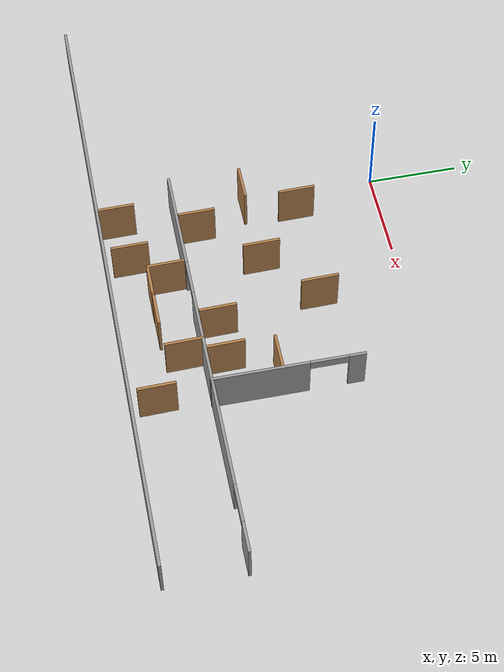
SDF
<sdf version="1.6">
 <world name="default">
  <model name="ground_plane">
   <static>1</static>
   <link name="link">
    <collision name="collision">
     <geometry><plane><normal>0 0 1</normal><size>100 100</size></plane></geometry>
     <surface><friction><ode><mu>100</mu><mu2>50</mu2></ode></friction></surface>
    </collision>
    <visual name="visual">
     <cast_shadows>0</cast_shadows>
     <geometry><plane><normal>0 0 1</normal><size>100 100</size></plane></geometry>
     <material>
      <script><uri>file://media/materials/scripts/gazebo.material</uri><name>Gazebo/Grey</name></script>
     </material>
    </visual>
   </link>
  </model>
  <model name="rbcp_final4">
   <link name="Wall_48">
    <pose>-0.05 -11.925 2.5 0 -0 3.14159</pose>
    <visual name="Wall_48_Visual">
     <pose>0 0 1.25 0 -0 0</pose>
     <geometry><box><size>35.25 0.15 2.5</size></box></geometry>
     <material>
      <script><uri>file://media/materials/scripts/gazebo.material</uri><name>Gazebo/Grey</name></script>
      <ambient>1 1 1 1</ambient>
      <diffuse>0.7 0.7 0.7 1</diffuse>
      <specular>0.01 0.01 0.01 1</specular>
      <emissive>0 0 0 1</emissive>
     </material>
    </visual>
    <collision name="Wall_48_Collision">
     <pose>0 0 1.25 0 -0 0</pose>
     <geometry><box><size>35.25 0.15 2.5</size></box></geometry>
     <surface>
      <friction>
       <ode><mu>1</mu><mu2>1</mu2><fdir1>0 0 0</fdir1><slip1>0</slip1><slip2>0</slip2></ode>
       <torsional>
        <coefficient>1</coefficient>
        <patch_radius>0</patch_radius>
        <surface_radius>0</surface_radius>
        <use_patch_radius>1</use_patch_radius>
        <ode><slip>0</slip></ode>
       </torsional>
      </friction>
      <bounce><restitution_coefficient>0</restitution_coefficient><threshold>1e+06</threshold></bounce>
      <contact>
       <collide_without_contact>0</collide_without_contact>
       <collide_without_contact_bitmask>1</collide_without_contact_bitmask>
       <collide_bitmask>1</collide_bitmask>
       <ode>
        <soft_cfm>0</soft_cfm>
        <soft_erp>0.2</soft_erp>
        <kp>1e+13</kp>
        <kd>1</kd>
        <max_vel>0.01</max_vel>
        <min_depth>0</min_depth>
       </ode>
       <bullet>
        <split_impulse>1</split_impulse>
        <split_impulse_penetration_threshold>-0.01</split_impulse_penetration_threshold>
        <soft_cfm>0</soft_cfm>
        <soft_erp>0.2</soft_erp>
        <kp>1e+13</kp>
        <kd>1</kd>
       </bullet>
      </contact>
     </surface>
    </collision>
   </link>
   <link name="Wall_53">
    <pose>6.175 -7.75578 2.5 0 -0 0</pose>
    <visual name="Wall_53_Visual_0">
     <pose>-8.53919 0 1.25 0 -0 0</pose>
     <geometry><box><size>5.92162 0.15 2.5</size></box></geometry>
     <material>
      <script><uri>file://media/materials/scripts/gazebo.material</uri><name>Gazebo/Grey</name></script>
      <ambient>1 1 1 1</ambient>
      <diffuse>0.7 0.7 0.7 1</diffuse>
      <specular>0.01 0.01 0.01 1</specular>
      <emissive>0 0 0 1</emissive>
     </material>
    </visual>
    <visual name="Wall_53_Visual_1">
     <pose>2.15861 0 1.25 0 -0 0</pose>
     <geometry><box><size>11.474 0.15 2.5</size></box></geometry>
     <material>
      <script><uri>file://media/materials/scripts/gazebo.material</uri><name>Gazebo/Grey</name></script>
      <ambient>1 1 1 1</ambient>
      <diffuse>0.7 0.7 0.7 1</diffuse>
      <specular>0.01 0.01 0.01 1</specular>
      <emissive>0 0 0 1</emissive>
     </material>
    </visual>
    <visual name="Wall_53_Visual_2">
     <pose>10.6978 0 1.25 0 -0 0</pose>
     <geometry><box><size>1.6044 0.15 2.5</size></box></geometry>
     <material>
      <script><uri>file://media/materials/scripts/gazebo.material</uri><name>Gazebo/Grey</name></script>
      <ambient>1 1 1 1</ambient>
      <diffuse>0.7 0.7 0.7 1</diffuse>
      <specular>0.01 0.01 0.01 1</specular>
      <emissive>0 0 0 1</emissive>
     </material>
    </visual>
    <visual name="Wall_53_Visual_3">
     <pose>-4.57838 0 2.25 0 -0 0</pose>
     <geometry><box><size>2 0.15 0.5</size></box></geometry>
     <material>
      <script><uri>file://media/materials/scripts/gazebo.material</uri><name>Gazebo/Grey</name></script>
      <ambient>1 1 1 1</ambient>
      <diffuse>0.7 0.7 0.7 1</diffuse>
      <specular>0.01 0.01 0.01 1</specular>
      <emissive>0 0 0 1</emissive>
     </material>
    </visual>
    <visual name="Wall_53_Visual_4">
     <pose>8.8956 0 2.25 0 -0 0</pose>
     <geometry><box><size>2 0.15 0.5</size></box></geometry>
     <material>
      <script><uri>file://media/materials/scripts/gazebo.material</uri><name>Gazebo/Grey</name></script>
      <ambient>1 1 1 1</ambient>
      <diffuse>0.7 0.7 0.7 1</diffuse>
      <specular>0.01 0.01 0.01 1</specular>
      <emissive>0 0 0 1</emissive>
     </material>
    </visual>
    <collision name="Wall_53_Collision_0">
     <pose>-8.53919 0 1.25 0 -0 0</pose>
     <geometry><box><size>5.92162 0.15 2.5</size></box></geometry>
     <surface>
      <friction>
       <ode><mu>1</mu><mu2>1</mu2><fdir1>0 0 0</fdir1><slip1>0</slip1><slip2>0</slip2></ode>
       <torsional>
        <coefficient>1</coefficient>
        <patch_radius>0</patch_radius>
        <surface_radius>0</surface_radius>
        <use_patch_radius>1</use_patch_radius>
        <ode><slip>0</slip></ode>
       </torsional>
      </friction>
      <bounce><restitution_coefficient>0</restitution_coefficient><threshold>1e+06</threshold></bounce>
      <contact>
       <collide_without_contact>0</collide_without_contact>
       <collide_without_contact_bitmask>1</collide_without_contact_bitmask>
       <collide_bitmask>1</collide_bitmask>
       <ode>
        <soft_cfm>0</soft_cfm>
        <soft_erp>0.2</soft_erp>
        <kp>1e+13</kp>
        <kd>1</kd>
        <max_vel>0.01</max_vel>
        <min_depth>0</min_depth>
       </ode>
       <bullet>
        <split_impulse>1</split_impulse>
        <split_impulse_penetration_threshold>-0.01</split_impulse_penetration_threshold>
        <soft_cfm>0</soft_cfm>
        <soft_erp>0.2</soft_erp>
        <kp>1e+13</kp>
        <kd>1</kd>
       </bullet>
      </contact>
     </surface>
    </collision>
    <collision name="Wall_53_Collision_1">
     <pose>2.15861 0 1.25 0 -0 0</pose>
     <geometry><box><size>11.474 0.15 2.5</size></box></geometry>
     <surface>
      <friction>
       <ode><mu>1</mu><mu2>1</mu2><fdir1>0 0 0</fdir1><slip1>0</slip1><slip2>0</slip2></ode>
       <torsional>
        <coefficient>1</coefficient>
        <patch_radius>0</patch_radius>
        <surface_radius>0</surface_radius>
        <use_patch_radius>1</use_patch_radius>
        <ode><slip>0</slip></ode>
       </torsional>
      </friction>
      <bounce><restitution_coefficient>0</restitution_coefficient><threshold>1e+06</threshold></bounce>
      <contact>
       <collide_without_contact>0</collide_without_contact>
       <collide_without_contact_bitmask>1</collide_without_contact_bitmask>
       <collide_bitmask>1</collide_bitmask>
       <ode>
        <soft_cfm>0</soft_cfm>
        <soft_erp>0.2</soft_erp>
        <kp>1e+13</kp>
        <kd>1</kd>
        <max_vel>0.01</max_vel>
        <min_depth>0</min_depth>
       </ode>
       <bullet>
        <split_impulse>1</split_impulse>
        <split_impulse_penetration_threshold>-0.01</split_impulse_penetration_threshold>
        <soft_cfm>0</soft_cfm>
        <soft_erp>0.2</soft_erp>
        <kp>1e+13</kp>
        <kd>1</kd>
       </bullet>
      </contact>
     </surface>
    </collision>
    <collision name="Wall_53_Collision_2">
     <pose>10.6978 0 1.25 0 -0 0</pose>
     <geometry><box><size>1.6044 0.15 2.5</size></box></geometry>
     <surface>
      <friction>
       <ode><mu>1</mu><mu2>1</mu2><fdir1>0 0 0</fdir1><slip1>0</slip1><slip2>0</slip2></ode>
       <torsional>
        <coefficient>1</coefficient>
        <patch_radius>0</patch_radius>
        <surface_radius>0</surface_radius>
        <use_patch_radius>1</use_patch_radius>
        <ode><slip>0</slip></ode>
       </torsional>
      </friction>
      <bounce><restitution_coefficient>0</restitution_coefficient><threshold>1e+06</threshold></bounce>
      <contact>
       <collide_without_contact>0</collide_without_contact>
       <collide_without_contact_bitmask>1</collide_without_contact_bitmask>
       <collide_bitmask>1</collide_bitmask>
       <ode>
        <soft_cfm>0</soft_cfm>
        <soft_erp>0.2</soft_erp>
        <kp>1e+13</kp>
        <kd>1</kd>
        <max_vel>0.01</max_vel>
        <min_depth>0</min_depth>
       </ode>
       <bullet>
        <split_impulse>1</split_impulse>
        <split_impulse_penetration_threshold>-0.01</split_impulse_penetration_threshold>
        <soft_cfm>0</soft_cfm>
        <soft_erp>0.2</soft_erp>
        <kp>1e+13</kp>
        <kd>1</kd>
       </bullet>
      </contact>
     </surface>
    </collision>
    <collision name="Wall_53_Collision_3">
     <pose>-4.57838 0 2.25 0 -0 0</pose>
     <geometry><box><size>2 0.15 0.5</size></box></geometry>
     <surface>
      <friction>
       <ode><mu>1</mu><mu2>1</mu2><fdir1>0 0 0</fdir1><slip1>0</slip1><slip2>0</slip2></ode>
       <torsional>
        <coefficient>1</coefficient>
        <patch_radius>0</patch_radius>
        <surface_radius>0</surface_radius>
        <use_patch_radius>1</use_patch_radius>
        <ode><slip>0</slip></ode>
       </torsional>
      </friction>
      <bounce><restitution_coefficient>0</restitution_coefficient><threshold>1e+06</threshold></bounce>
      <contact>
       <collide_without_contact>0</collide_without_contact>
       <collide_without_contact_bitmask>1</collide_without_contact_bitmask>
       <collide_bitmask>1</collide_bitmask>
       <ode>
        <soft_cfm>0</soft_cfm>
        <soft_erp>0.2</soft_erp>
        <kp>1e+13</kp>
        <kd>1</kd>
        <max_vel>0.01</max_vel>
        <min_depth>0</min_depth>
       </ode>
       <bullet>
        <split_impulse>1</split_impulse>
        <split_impulse_penetration_threshold>-0.01</split_impulse_penetration_threshold>
        <soft_cfm>0</soft_cfm>
        <soft_erp>0.2</soft_erp>
        <kp>1e+13</kp>
        <kd>1</kd>
       </bullet>
      </contact>
     </surface>
    </collision>
    <collision name="Wall_53_Collision_4">
     <pose>8.8956 0 2.25 0 -0 0</pose>
     <geometry><box><size>2 0.15 0.5</size></box></geometry>
     <surface>
      <friction>
       <ode><mu>1</mu><mu2>1</mu2><fdir1>0 0 0</fdir1><slip1>0</slip1><slip2>0</slip2></ode>
       <torsional>
        <coefficient>1</coefficient>
        <patch_radius>0</patch_radius>
        <surface_radius>0</surface_radius>
        <use_patch_radius>1</use_patch_radius>
        <ode><slip>0</slip></ode>
       </torsional>
      </friction>
      <bounce><restitution_coefficient>0</restitution_coefficient><threshold>1e+06</threshold></bounce>
      <contact>
       <collide_without_contact>0</collide_without_contact>
       <collide_without_contact_bitmask>1</collide_without_contact_bitmask>
       <collide_bitmask>1</collide_bitmask>
       <ode>
        <soft_cfm>0</soft_cfm>
        <soft_erp>0.2</soft_erp>
        <kp>1e+13</kp>
        <kd>1</kd>
        <max_vel>0.01</max_vel>
        <min_depth>0</min_depth>
       </ode>
       <bullet>
        <split_impulse>1</split_impulse>
        <split_impulse_penetration_threshold>-0.01</split_impulse_penetration_threshold>
        <soft_cfm>0</soft_cfm>
        <soft_erp>0.2</soft_erp>
        <kp>1e+13</kp>
        <kd>1</kd>
       </bullet>
      </contact>
     </surface>
    </collision>
   </link>
   <link name="Wall_60">
    <pose>8.05031 -3.85445 2.5 0 0 -1.5708</pose>
    <visual name="Wall_60_Visual_0">
     <pose>-3.55299 0 1.25 0 -0 0</pose>
     <geometry><box><size>0.894022 0.15 2.5</size></box></geometry>
     <material>
      <script><uri>file://media/materials/scripts/gazebo.material</uri><name>Gazebo/Grey</name></script>
      <ambient>1 1 1 1</ambient>
      <diffuse>0.7 0.7 0.7 1</diffuse>
      <specular>0.01 0.01 0.01 1</specular>
      <emissive>0 0 0 1</emissive>
     </material>
    </visual>
    <visual name="Wall_60_Visual_1">
     <pose>1.44701 0 1.25 0 -0 0</pose>
     <geometry><box><size>5.10598 0.15 2.5</size></box></geometry>
     <material>
      <script><uri>file://media/materials/scripts/gazebo.material</uri><name>Gazebo/Grey</name></script>
      <ambient>1 1 1 1</ambient>
      <diffuse>0.7 0.7 0.7 1</diffuse>
      <specular>0.01 0.01 0.01 1</specular>
      <emissive>0 0 0 1</emissive>
     </material>
    </visual>
    <visual name="Wall_60_Visual_2">
     <pose>-2.10598 0 2.25 0 -0 0</pose>
     <geometry><box><size>2 0.15 0.5</size></box></geometry>
     <material>
      <script><uri>file://media/materials/scripts/gazebo.material</uri><name>Gazebo/Grey</name></script>
      <ambient>1 1 1 1</ambient>
      <diffuse>0.7 0.7 0.7 1</diffuse>
      <specular>0.01 0.01 0.01 1</specular>
      <emissive>0 0 0 1</emissive>
     </material>
    </visual>
    <collision name="Wall_60_Collision_0">
     <pose>-3.55299 0 1.25 0 -0 0</pose>
     <geometry><box><size>0.894022 0.15 2.5</size></box></geometry>
     <surface>
      <friction>
       <ode><mu>1</mu><mu2>1</mu2><fdir1>0 0 0</fdir1><slip1>0</slip1><slip2>0</slip2></ode>
       <torsional>
        <coefficient>1</coefficient>
        <patch_radius>0</patch_radius>
        <surface_radius>0</surface_radius>
        <use_patch_radius>1</use_patch_radius>
        <ode><slip>0</slip></ode>
       </torsional>
      </friction>
      <bounce><restitution_coefficient>0</restitution_coefficient><threshold>1e+06</threshold></bounce>
      <contact>
       <collide_without_contact>0</collide_without_contact>
       <collide_without_contact_bitmask>1</collide_without_contact_bitmask>
       <collide_bitmask>1</collide_bitmask>
       <ode>
        <soft_cfm>0</soft_cfm>
        <soft_erp>0.2</soft_erp>
        <kp>1e+13</kp>
        <kd>1</kd>
        <max_vel>0.01</max_vel>
        <min_depth>0</min_depth>
       </ode>
       <bullet>
        <split_impulse>1</split_impulse>
        <split_impulse_penetration_threshold>-0.01</split_impulse_penetration_threshold>
        <soft_cfm>0</soft_cfm>
        <soft_erp>0.2</soft_erp>
        <kp>1e+13</kp>
        <kd>1</kd>
       </bullet>
      </contact>
     </surface>
    </collision>
    <collision name="Wall_60_Collision_1">
     <pose>1.44701 0 1.25 0 -0 0</pose>
     <geometry><box><size>5.10598 0.15 2.5</size></box></geometry>
     <surface>
      <friction>
       <ode><mu>1</mu><mu2>1</mu2><fdir1>0 0 0</fdir1><slip1>0</slip1><slip2>0</slip2></ode>
       <torsional>
        <coefficient>1</coefficient>
        <patch_radius>0</patch_radius>
        <surface_radius>0</surface_radius>
        <use_patch_radius>1</use_patch_radius>
        <ode><slip>0</slip></ode>
       </torsional>
      </friction>
      <bounce><restitution_coefficient>0</restitution_coefficient><threshold>1e+06</threshold></bounce>
      <contact>
       <collide_without_contact>0</collide_without_contact>
       <collide_without_contact_bitmask>1</collide_without_contact_bitmask>
       <collide_bitmask>1</collide_bitmask>
       <ode>
        <soft_cfm>0</soft_cfm>
        <soft_erp>0.2</soft_erp>
        <kp>1e+13</kp>
        <kd>1</kd>
        <max_vel>0.01</max_vel>
        <min_depth>0</min_depth>
       </ode>
       <bullet>
        <split_impulse>1</split_impulse>
        <split_impulse_penetration_threshold>-0.01</split_impulse_penetration_threshold>
        <soft_cfm>0</soft_cfm>
        <soft_erp>0.2</soft_erp>
        <kp>1e+13</kp>
        <kd>1</kd>
       </bullet>
      </contact>
     </surface>
    </collision>
    <collision name="Wall_60_Collision_2">
     <pose>-2.10598 0 2.25 0 -0 0</pose>
     <geometry><box><size>2 0.15 0.5</size></box></geometry>
     <surface>
      <friction>
       <ode><mu>1</mu><mu2>1</mu2><fdir1>0 0 0</fdir1><slip1>0</slip1><slip2>0</slip2></ode>
       <torsional>
        <coefficient>1</coefficient>
        <patch_radius>0</patch_radius>
        <surface_radius>0</surface_radius>
        <use_patch_radius>1</use_patch_radius>
        <ode><slip>0</slip></ode>
       </torsional>
      </friction>
      <bounce><restitution_coefficient>0</restitution_coefficient><threshold>1e+06</threshold></bounce>
      <contact>
       <collide_without_contact>0</collide_without_contact>
       <collide_without_contact_bitmask>1</collide_without_contact_bitmask>
       <collide_bitmask>1</collide_bitmask>
       <ode>
        <soft_cfm>0</soft_cfm>
        <soft_erp>0.2</soft_erp>
        <kp>1e+13</kp>
        <kd>1</kd>
        <max_vel>0.01</max_vel>
        <min_depth>0</min_depth>
       </ode>
       <bullet>
        <split_impulse>1</split_impulse>
        <split_impulse_penetration_threshold>-0.01</split_impulse_penetration_threshold>
        <soft_cfm>0</soft_cfm>
        <soft_erp>0.2</soft_erp>
        <kp>1e+13</kp>
        <kd>1</kd>
       </bullet>
      </contact>
     </surface>
    </collision>
   </link>
   <static>1</static>
   <pose>4.93057 -3.68418 -2.5 0 -0 0</pose>
  </model>
  <model name="tr_maze_lay_1_clone">
   <pose>1.06172 -14.5786 0 0 0 -1.549</pose>
   <link name="Wall_21">
    <collision name="Wall_21_Collision">
     <geometry><box><size>2 0.15 2.5</size></box></geometry>
     <pose>0 0 1.25 0 -0 0</pose>
    </collision>
    <visual name="Wall_21_Visual">
     <pose>0 0 1.25 0 -0 0</pose>
     <geometry><box><size>2 0.15 2.5</size></box></geometry>
     <material>
      <script><uri>file://media/materials/scripts/gazebo.material</uri><name>Gazebo/Wood</name></script>
      <ambient>1 1 1 1</ambient>
     </material>
    </visual>
    <pose>0 0 0 0 -0 3.14159</pose>
   </link>
   <static>1</static>
  </model>
  <model name="tr_maze_lay_1_clone_0">
   <pose>10.4312 -12.4361 0 0 0 -1.549</pose>
   <link name="Wall_21">
    <collision name="Wall_21_Collision">
     <geometry><box><size>2 0.15 2.5</size></box></geometry>
     <pose>0 0 1.25 0 -0 0</pose>
    </collision>
    <visual name="Wall_21_Visual">
     <pose>0 0 1.25 0 -0 0</pose>
     <geometry><box><size>2 0.15 2.5</size></box></geometry>
     <material>
      <script><uri>file://media/materials/scripts/gazebo.material</uri><name>Gazebo/Wood</name></script>
      <ambient>1 1 1 1</ambient>
     </material>
    </visual>
    <pose>0 0 0 0 -0 3.14159</pose>
   </link>
   <static>1</static>
  </model>
  <model name="tr_maze_lay_1_clone_1">
   <pose>12.8208 -14.2035 0 0 0 -1.549</pose>
   <link name="Wall_21">
    <collision name="Wall_21_Collision">
     <geometry><box><size>2 0.15 2.5</size></box></geometry>
     <pose>0 0 1.25 0 -0 0</pose>
    </collision>
    <visual name="Wall_21_Visual">
     <pose>0 0 1.25 0 -0 0</pose>
     <geometry><box><size>2 0.15 2.5</size></box></geometry>
     <material>
      <script><uri>file://media/materials/scripts/gazebo.material</uri><name>Gazebo/Wood</name></script>
      <ambient>1 1 1 1</ambient>
     </material>
    </visual>
    <pose>0 0 0 0 -0 3.14159</pose>
   </link>
   <static>1</static>
  </model>
  <model name="tr_maze_lay_1_clone_8">
   <pose>5.36078 -12.5312 0 0 0 -1.549</pose>
   <link name="Wall_21">
    <collision name="Wall_21_Collision">
     <geometry><box><size>2 0.15 2.5</size></box></geometry>
     <pose>0 0 1.25 0 -0 0</pose>
    </collision>
    <visual name="Wall_21_Visual">
     <pose>0 0 1.25 0 -0 0</pose>
     <geometry><box><size>2 0.15 2.5</size></box></geometry>
     <material>
      <script><uri>file://media/materials/scripts/gazebo.material</uri><name>Gazebo/Wood</name></script>
      <ambient>1 1 1 1</ambient>
     </material>
    </visual>
    <pose>0 0 0 0 -0 3.14159</pose>
   </link>
   <static>1</static>
  </model>
  <model name="tr_maze_lay_1_clone_9">
   <pose>3.80702 -14.2283 0 0 0 -1.549</pose>
   <link name="Wall_21">
    <collision name="Wall_21_Collision">
     <geometry><box><size>2 0.15 2.5</size></box></geometry>
     <pose>0 0 1.25 0 -0 0</pose>
    </collision>
    <visual name="Wall_21_Visual">
     <pose>0 0 1.25 0 -0 0</pose>
     <geometry><box><size>2 0.15 2.5</size></box></geometry>
     <material>
      <script><uri>file://media/materials/scripts/gazebo.material</uri><name>Gazebo/Wood</name></script>
      <ambient>1 1 1 1</ambient>
     </material>
    </visual>
    <pose>0 0 0 0 -0 3.14159</pose>
   </link>
   <static>1</static>
  </model>
  <model name="tr_maze_lay_1_clone_9_clone_1">
   <pose>10.9882 -10.3699 0 0 0 -1.549</pose>
   <link name="Wall_21">
    <collision name="Wall_21_Collision">
     <geometry><box><size>2 0.15 2.5</size></box></geometry>
     <pose>0 0 1.25 0 -0 0</pose>
    </collision>
    <visual name="Wall_21_Visual">
     <pose>0 0 1.25 0 -0 0</pose>
     <geometry><box><size>2 0.15 2.5</size></box></geometry>
     <material>
      <script><uri>file://media/materials/scripts/gazebo.material</uri><name>Gazebo/Wood</name></script>
      <ambient>1 1 1 1</ambient>
     </material>
    </visual>
    <pose>0 0 0 0 -0 3.14159</pose>
   </link>
   <static>1</static>
  </model>
  <model name="tr_maze_lay_1_clone_9_clone_2">
   <pose>8.68718 -10.3454 0 0 0 -1.549</pose>
   <link name="Wall_21">
    <collision name="Wall_21_Collision">
     <geometry><box><size>2 0.15 2.5</size></box></geometry>
     <pose>0 0 1.25 0 -0 0</pose>
    </collision>
    <visual name="Wall_21_Visual">
     <pose>0 0 1.25 0 -0 0</pose>
     <geometry><box><size>2 0.15 2.5</size></box></geometry>
     <material>
      <script><uri>file://media/materials/scripts/gazebo.material</uri><name>Gazebo/Wood</name></script>
      <ambient>1 1 1 1</ambient>
     </material>
    </visual>
    <pose>0 0 0 0 -0 3.14159</pose>
   </link>
   <static>1</static>
  </model>
  <model name="tr_maze_lay_1_clone_9_clone_3">
   <pose>1.73462 -4.70652 0 0 0 -1.549</pose>
   <link name="Wall_21">
    <collision name="Wall_21_Collision">
     <geometry><box><size>2 0.15 2.5</size></box></geometry>
     <pose>0 0 1.25 0 -0 0</pose>
    </collision>
    <visual name="Wall_21_Visual">
     <pose>0 0 1.25 0 -0 0</pose>
     <geometry><box><size>2 0.15 2.5</size></box></geometry>
     <material>
      <script><uri>file://media/materials/scripts/gazebo.material</uri><name>Gazebo/Wood</name></script>
      <ambient>1 1 1 1</ambient>
     </material>
    </visual>
    <pose>0 0 0 0 -0 3.14159</pose>
   </link>
   <static>1</static>
  </model>
  <model name="tr_maze_lay_1_clone_9_clone_4">
   <pose>7.89944 -4.78034 0 0 0 -1.549</pose>
   <link name="Wall_21">
    <collision name="Wall_21_Collision">
     <geometry><box><size>2 0.15 2.5</size></box></geometry>
     <pose>0 0 1.25 0 -0 0</pose>
    </collision>
    <visual name="Wall_21_Visual">
     <pose>0 0 1.25 0 -0 0</pose>
     <geometry><box><size>2 0.15 2.5</size></box></geometry>
     <material>
      <script><uri>file://media/materials/scripts/gazebo.material</uri><name>Gazebo/Wood</name></script>
      <ambient>1 1 1 1</ambient>
     </material>
    </visual>
    <pose>0 0 0 0 -0 3.14159</pose>
   </link>
   <static>1</static>
  </model>
  <model name="tr_maze_lay_1_clone_9_clone_5">
   <pose>2.22817 -10.345 0 0 0 -1.549</pose>
   <link name="Wall_21">
    <collision name="Wall_21_Collision">
     <geometry><box><size>2 0.15 2.5</size></box></geometry>
     <pose>0 0 1.25 0 -0 0</pose>
    </collision>
    <visual name="Wall_21_Visual">
     <pose>0 0 1.25 0 -0 0</pose>
     <geometry><box><size>2 0.15 2.5</size></box></geometry>
     <material>
      <script><uri>file://media/materials/scripts/gazebo.material</uri><name>Gazebo/Wood</name></script>
      <ambient>1 1 1 1</ambient>
     </material>
    </visual>
    <pose>0 0 0 0 -0 3.14159</pose>
   </link>
   <static>1</static>
  </model>
  <model name="tr_maze_lay_1_clone_9_clone_6">
   <pose>4.98285 -7.31651 0 0 0 -1.549</pose>
   <link name="Wall_21">
    <collision name="Wall_21_Collision">
     <geometry><box><size>2 0.15 2.5</size></box></geometry>
     <pose>0 0 1.25 0 -0 0</pose>
    </collision>
    <visual name="Wall_21_Visual">
     <pose>0 0 1.25 0 -0 0</pose>
     <geometry><box><size>2 0.15 2.5</size></box></geometry>
     <material>
      <script><uri>file://media/materials/scripts/gazebo.material</uri><name>Gazebo/Wood</name></script>
      <ambient>1 1 1 1</ambient>
     </material>
    </visual>
    <pose>0 0 0 0 -0 3.14159</pose>
   </link>
   <static>1</static>
  </model>
  <model name="tr_maze_lay_1_clone_12">
   <pose>6.29878 -13.4993 0 0 -0 0</pose>
   <link name="Wall_21">
    <collision name="Wall_21_Collision">
     <geometry><box><size>2 0.15 2.5</size></box></geometry>
     <pose>0 0 1.25 0 -0 0</pose>
    </collision>
    <visual name="Wall_21_Visual">
     <pose>0 0 1.25 0 -0 0</pose>
     <geometry><box><size>2 0.15 2.5</size></box></geometry>
     <material>
      <script><uri>file://media/materials/scripts/gazebo.material</uri><name>Gazebo/Wood</name></script>
      <ambient>1 1 1 1</ambient>
     </material>
    </visual>
    <pose>0 0 0 0 -0 3.14159</pose>
   </link>
   <static>1</static>
  </model>
  <model name="tr_maze_lay_1_clone_7">
   <pose>8.07542 -13.4807 0 0 -0 0</pose>
   <link name="Wall_21">
    <collision name="Wall_21_Collision">
     <geometry><box><size>2 0.15 2.5</size></box></geometry>
     <pose>0 0 1.25 0 -0 0</pose>
    </collision>
    <visual name="Wall_21_Visual">
     <pose>0 0 1.25 0 -0 0</pose>
     <geometry><box><size>2 0.15 2.5</size></box></geometry>
     <material>
      <script><uri>file://media/materials/scripts/gazebo.material</uri><name>Gazebo/Wood</name></script>
      <ambient>1 1 1 1</ambient>
     </material>
    </visual>
    <pose>0 0 0 0 -0 3.14159</pose>
   </link>
   <static>1</static>
  </model>
  <model name="tr_maze_lay_1_clone_16">
   <pose>0.658751 -7.5263 0 0 -0 0</pose>
   <link name="Wall_21">
    <collision name="Wall_21_Collision">
     <geometry><box><size>2 0.15 2.5</size></box></geometry>
     <pose>0 0 1.25 0 -0 0</pose>
    </collision>
    <visual name="Wall_21_Visual">
     <pose>0 0 1.25 0 -0 0</pose>
     <geometry><box><size>2 0.15 2.5</size></box></geometry>
     <material>
      <script><uri>file://media/materials/scripts/gazebo.material</uri><name>Gazebo/Wood</name></script>
      <ambient>1 1 1 1</ambient>
     </material>
    </visual>
    <pose>0 0 0 0 -0 3.14159</pose>
   </link>
   <static>1</static>
  </model>
  <model name="tr_maze_lay_1_clone_15_clone_2">
   <pose>11.9904 -7.82638 0 0 -0 0</pose>
   <link name="Wall_21">
    <collision name="Wall_21_Collision">
     <geometry><box><size>2 0.15 2.5</size></box></geometry>
     <pose>0 0 1.25 0 -0 0</pose>
    </collision>
    <visual name="Wall_21_Visual">
     <pose>0 0 1.25 0 -0 0</pose>
     <geometry><box><size>2 0.15 2.5</size></box></geometry>
     <material>
      <script><uri>file://media/materials/scripts/gazebo.material</uri><name>Gazebo/Wood</name></script>
      <ambient>1 1 1 1</ambient>
     </material>
    </visual>
    <pose>0 0 0 0 -0 3.14159</pose>
   </link>
   <static>1</static>
  </model>
 </world>
</sdf>
